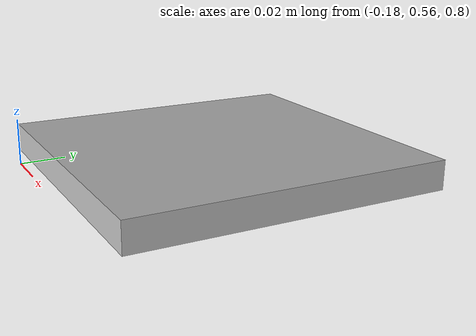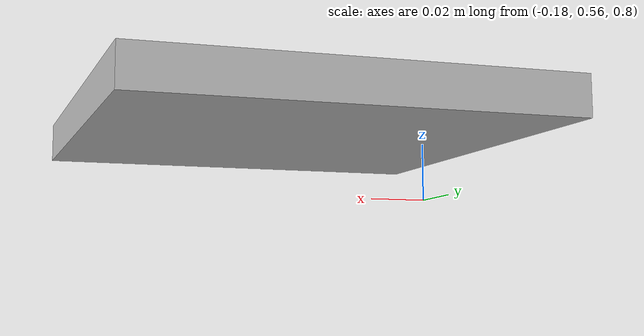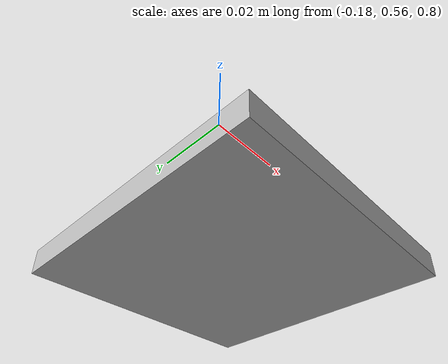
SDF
<?xml version='1.0'?>
<sdf version='1.6'>
  <model name="soporteInvisible">
    <static>true</static>
    <!--eje x, eje y , eje z  -->
    <pose>-0.110282 0.620224 0.814962 0 0 0</pose>
    <link name="link">
      <collision name="collision">
        <geometry>
          <box>
            <size>0.120418 0.124376 0.011509</size>
          </box>
        </geometry>
        <surface>
          <friction>
            <ode>
              <mu>0.5</mu>
              <mu2>0.5</mu2>
            </ode>
          </friction>
          <contact>
            <ode>
              <soft_cfm>0.01</soft_cfm>
              <soft_erp>0.8</soft_erp>
            </ode>
          </contact>
        </surface>
      </collision>
      <visual name="visual">
        <geometry>
          <box>
            <size>0.120418 0.124376 0.011509</size>
          </box>
        </geometry>
      </visual>
    </link>
  </model>
</sdf>
